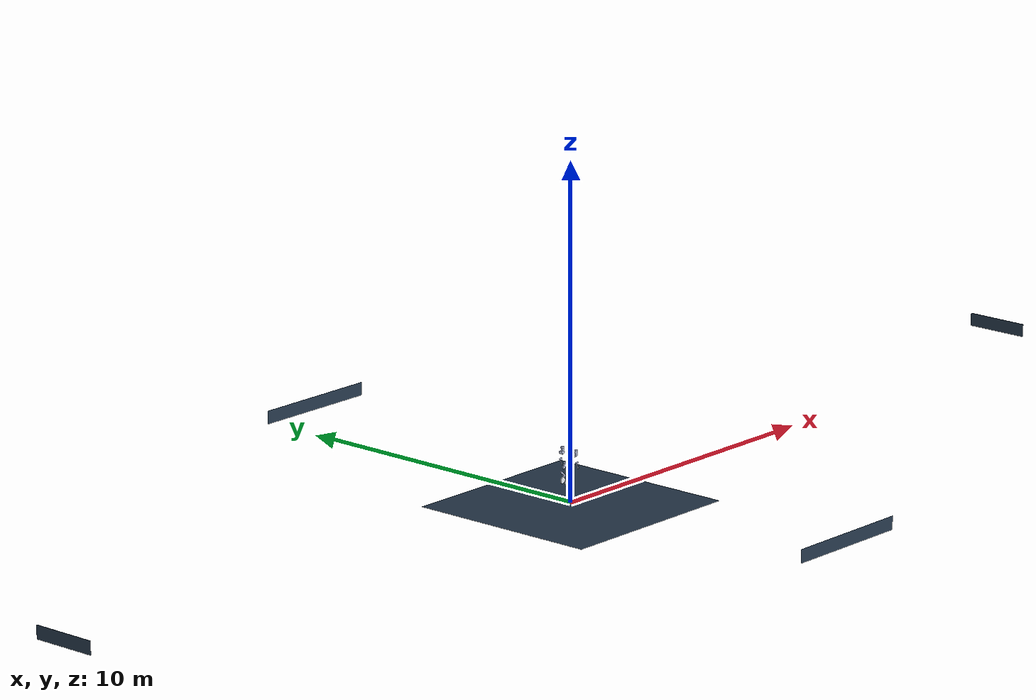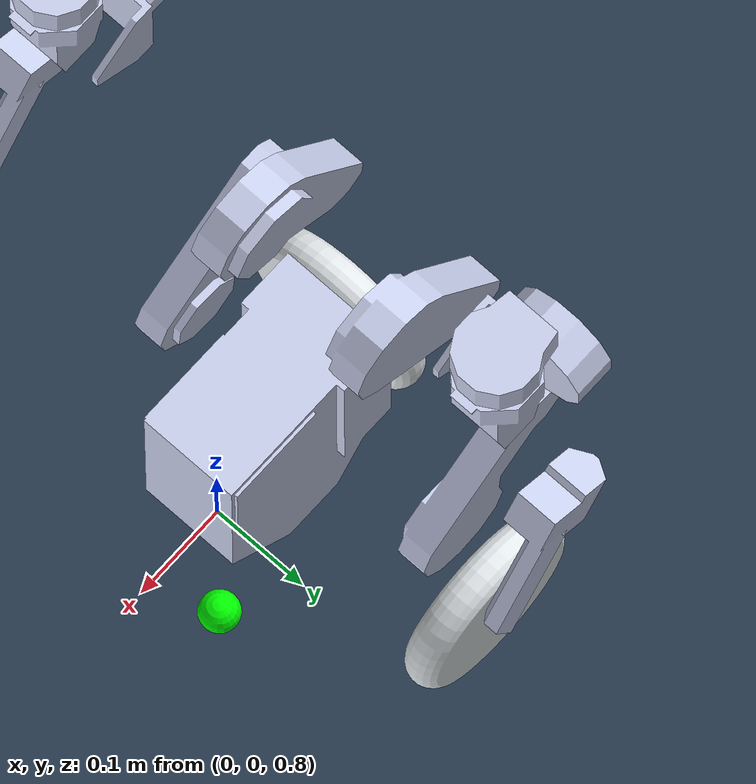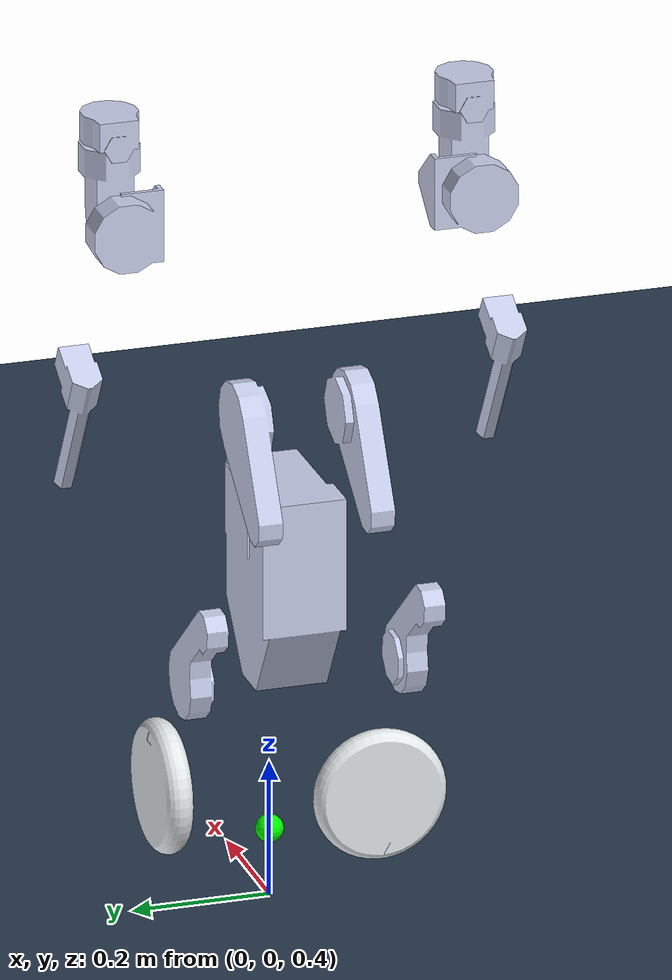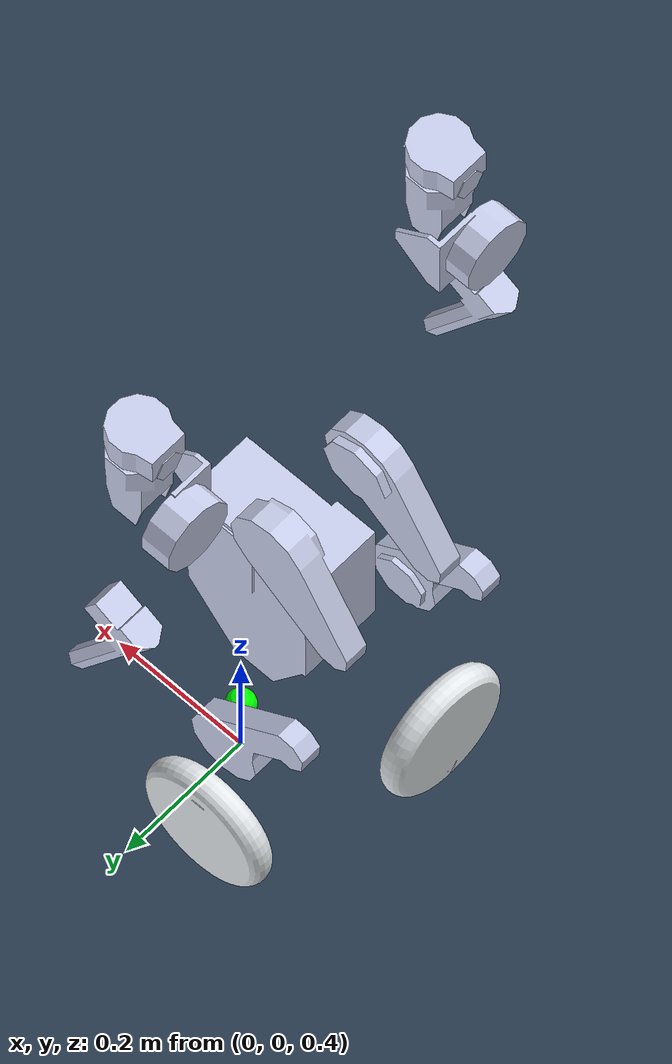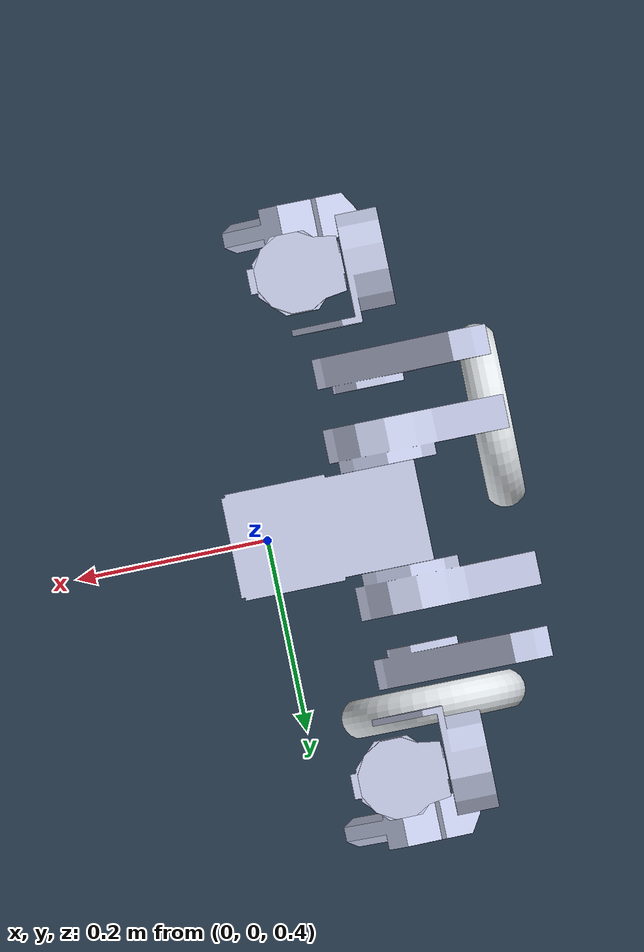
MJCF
<mujoco model="SATYRR_NEW_V4">
    <compiler eulerseq = "zyx" angle="radian" meshdir="C:\Users\RoboDesign Lab\Desktop\BDH\Potential_Field_Obs_Avoidance\mujoco200_win64\src\data\satyrr_wholebody\"/>
    <size njmax="500" nconmax="100" />
    <option integrator="RK4" timestep="0.001"/>

    <default>
		<geom contype = '0' conaffinity = '0'/>
		<default class = 'collision-default'>
			<geom contype = '1' user = '2'/>
			<default class = 'collision-group-a'>
				<geom contype = '2' conaffinity = '4'/>
			</default>
			<default class = 'collision-group-b'>
				<geom contype = '4' conaffinity = '2'/>
			</default>
		</default>
    </default>

    <asset>
        <mesh name="Torso" file="Torso.STL" />
        <mesh name="Thigh_R" file="Thigh_R.STL" />
        <mesh name="Shin_R" file="Shin_R.STL" />
        <mesh name="Wheel_R" file="Wheel_R.STL" />
        <mesh name="Thigh_L" file="Thigh_L.STL" />
        <mesh name="Shin_L" file="Shin_L.STL" />
        <mesh name="Wheel_L" file="Wheel_L.STL" />
        <mesh name="Shoulder_U_L" file="Shoulder_U_L.STL" />
        <mesh name="Shoulder_L" file="Shoulder_L.STL" />
        <mesh name="Arm_L" file="Arm_L.STL" />
        <mesh name="Shank_L" file="Shank_L.STL" />
        <mesh name="Shoulder_U_R" file="Shoulder_U_R.STL" />
        <mesh name="Shoulder_R" file="Shoulder_R.STL" />
        <mesh name="Arm_R" file="Arm_R.STL" />
        <mesh name="Shank_R" file="Shank_R.STL" />
        <texture name="texplane" builtin="checker" height="512"  rgb1=".2 .3 .4" rgb2=".1 0.15 0.2" type="2d" width="512"/>
        <material name="floorplane" reflectance="0.5" texrepeat="1 1" texture="texplane" texuniform="true"/>
        <material name="table_mat" specular="0" shininess="0.5" reflectance="0" rgba="0.93 0.93 0.93 1"></material>

    </asset>

    <worldbody>
        <geom name="floor0" pos="0. 0. 0" size="3 3 .125" type="plane" condim="3" material="floorplane"></geom>
		<body name="floor0" pos="0. 0. 0.0">
			<site name="target0" pos="0 0 0.5" size="0.02 0.02 0.02" rgba="0 1 0 1" type="ellipsoid"></site>
		</body>

		<light directional="true" ambient="0.2 0.2 0.2" diffuse="0.8 0.8 0.8" specular="0.3 0.3 0.3" castshadow="false" pos="0 0 4" dir="0 0 -1" name="light0"></light>

        <body name="wall1_body" pos="20 0 1">
            <geom name="wall1_geom" type="plane" size="1 0.2 0.2" pos="0 0 0" quat="0.5 0.5 0.5 0.5" material="floorplane" condim="1"/>
        </body>
        <body name="wall2_body" pos="0 10 1">
            <geom name="wall2_geom" type="plane" size="2 0.2 0.2" pos="0 0 0" quat="0.7071 0.7071 0 0 " material="floorplane" condim="1"/>
        </body>
        <body name="wall3_body" pos="-20 0 1">
            <geom name="wall3_geom" type="plane" size="1 0.2 0.2" pos="0 0 0" quat="0.5 0.5 0.5 0.5" material="floorplane" condim="1"/>
        </body>
        <body name="wall4_body" pos="0 -10 1">
            <geom name="wall4_geom" type="plane" size="2 0.2 0.2" pos="0 0 0" quat="0.7071 0.7071 0 0 " material="floorplane" condim="1"/>
        </body>
		<!-- camera: front view -->

        <body name="torso" pos="-0.06625 0.0 0.4869">
            <joint axis = "1 0 0" pos = "0 0 0" name = "move_x" type = "slide" limited = "false"/>
			<joint axis = "0 1 0" pos = "0 0 0" name = "move_y" type = "slide" limited = "false"/>
			<joint axis = "0 0 1" pos = "0 0 0" name = "move_z" type = "slide" limited = "false"/>
			<joint axis = "1 0 0" pos = "0 0 0" name = "rotate_roll" type = "hinge" limited = "false"/>
			<joint axis = "0 1 0" pos = "0 0 0" name = "rotate_pitch" type = "hinge" limited = "false"/>
			<joint axis = "0 0 1" pos = "0 0 0" name = "rotate_yaw" type = "hinge" limited = "false"/>
            <geom friction="0.9" type="mesh" rgba="0.79216 0.81961 0.93333 1" mesh="Torso" mass="4.05" />

        <body name="Thigh_R" pos="-0.06625 0 0.36">
            <inertial pos="0 -0.080175 -0.0380315" quat="0.707107 0 0 0.707107" mass="0.904864" diaginertia="0.00325713 0.00280128 0.000871858" />
            <joint name="Hip_R" pos="0 0 0" axis="0 -1 0" />
            <geom type="mesh" rgba="0.792157 0.819608 0.933333 1" mesh="Thigh_R" />
            <body name="Shin_R" pos="0 -0.080175 -0.15">
                <inertial pos="0 0 -0.0789246" quat="0.707107 0 0 0.707107" mass="0.394882" diaginertia="0.00112813 0.00112607 0.000173116" />
                <joint name="Knee_R" pos="0 0 0" axis="0 -1 0" />
                <geom type="mesh" rgba="0.792157 0.819608 0.933333 1" mesh="Shin_R" />
                <body name="Wheel_R" pos="0 0 -0.15" quat="0.707107 0 0 -0.707107">
                    <inertial pos="0.0356257 0 0" mass="0.52599" diaginertia="0.000948894 0.000489944 0.000489944" />
                    <joint name="Ankle_R" pos="0 0 0" axis="1 0 0" />
                    <geom type="mesh" rgba="0.898039 0.917647 0.929412 1" mesh="Wheel_R" />
                </body>
            </body>
        </body>
        <body name="Thigh_L" pos="-0.06625 0 0.36">
            <inertial pos="0 0.080175 -0.0380315" quat="0.707107 0 0 0.707107" mass="0.904864" diaginertia="0.00325713 0.00280128 0.000871858" />
            <joint name="Hip_L" pos="0 0 0" axis="0 -1 0" />
            <geom type="mesh" rgba="0.792157 0.819608 0.933333 1" mesh="Thigh_L" />
            <body name="Shin_L" pos="0 0.080175 -0.15">
                <inertial pos="0 0 -0.0789246" quat="0.707107 0 0 0.707107" mass="0.394882" diaginertia="0.00112813 0.00112607 0.000173116" />
                <joint name="Knee_L" pos="0 0 0" axis="0 -1 0" />
                <geom type="mesh" rgba="0.792157 0.819608 0.933333 1" mesh="Shin_L" />
                <body name="Wheel_L" pos="0 0 -0.15">
                    <inertial pos="0 0.0363743 0" quat="0.707107 0 0 0.707107" mass="0.52599" diaginertia="0.000948894 0.000489944 0.000489944" />
                    <joint name="Ankle_L" pos="0 0 0" axis="0 -1 0" />
                    <geom type="mesh" rgba="0.898039 0.917647 0.929412 1" mesh="Wheel_L" />
                </body>
            </body>
        </body>
        <body name="Shoulder_U_L" pos="-0.06625 0.13274 0.48068">
            <inertial pos="5.98242e-08 -3.82379e-09 0.0467603" quat="0.5 0.5 0.5 0.5" mass="0.246892" diaginertia="0.0012863 0.00103844 0.00030284" />
            <geom type="mesh" rgba="0.792157 0.819608 0.933333 1" mesh="Shoulder_U_L" />
            <body name="Shoulder_L" pos="0 0 0.114214">
                <inertial pos="-7.6505e-09 4.57848e-09 2.98572e-10" quat="0.500001 0.499999 0.499999 0.500001" mass="0.225611" diaginertia="0.000280653 0.000166998 0.000150663" />
                <geom type="mesh" rgba="0.792157 0.819608 0.933333 1" mesh="Shoulder_L" />
                <body name="Arm_L" pos="0 0 0">
                    <inertial pos="0 0.0494924 -0.061196" quat="0.707074 0.00680441 -0.00680441 0.707074" mass="0.584971" diaginertia="0.00283895 0.00259254 0.000369078" />
                    <geom type="mesh" rgba="0.792157 0.819608 0.933333 1" mesh="Arm_L" />
                    <body name="Shank_L" pos="0 0.05082 -0.204">
                        <inertial pos="9.76797e-09 0 -0.0687371" quat="0.707107 0 0 0.707107" mass="0.111225" diaginertia="0.000216628 0.00021518 1.39816e-05" />
                        <geom type="mesh" rgba="0.792157 0.819608 0.933333 1" mesh="Shank_L" />
                    </body>
                </body>
            </body>
        </body>
        <body name="Shoulder_U_R" pos="-0.06625 -0.13274 0.48068">
            <inertial pos="5.98242e-08 -3.82379e-09 0.0467603" quat="0.5 0.5 0.5 0.5" mass="0.246892" diaginertia="0.0012863 0.00103844 0.00030284" />
            <geom type="mesh" rgba="0.792157 0.819608 0.933333 1" mesh="Shoulder_U_R" />
            <body name="Shoulder_R" pos="0 0 0.114214">
                <inertial pos="-7.6505e-09 4.57848e-09 2.98572e-10" quat="0.500001 0.499999 0.499999 0.500001" mass="0.225611" diaginertia="0.000280653 0.000166998 0.000150663" />
                <geom type="mesh" rgba="0.792157 0.819608 0.933333 1" mesh="Shoulder_R" />
                <body name="Arm_R" pos="0 0 0">
                    <inertial pos="0 -0.0494924 -0.061196" quat="0.707074 -0.00680441 0.00680441 0.707074" mass="0.584971" diaginertia="0.00283895 0.00259254 0.000369078" />
                    <geom type="mesh" rgba="0.792157 0.819608 0.933333 1" mesh="Arm_R" />
                    <body name="Shank_R" pos="0 -0.05082 -0.204">
                        <inertial pos="-9.76797e-09 0 -0.0687371" quat="0.707107 0 0 0.707107" mass="0.111225" diaginertia="0.000216628 0.00021518 1.39816e-05" />
                        <geom type="mesh" rgba="0.792157 0.819608 0.933333 1" mesh="Shank_R" />
                    </body>
                </body>
            </body>
        </body>
        </body>
    </worldbody>

    <actuator>
        <motor ctrllimited="true" ctrlrange="-100.0 100.0" gear="1" joint="Hip_L"/>
        <motor ctrllimited="true" ctrlrange="-100.0 100.0" gear="1" joint="Knee_L"/>
        <motor ctrllimited="true" ctrlrange="-100.0 100.0" gear="1" joint="Ankle_L"/>
        <motor ctrllimited="true" ctrlrange="-100.0 100.0" gear="1" joint="Hip_R"/>
        <motor ctrllimited="true" ctrlrange="-100.0 100.0" gear="1" joint="Knee_R"/>
        <motor ctrllimited="true" ctrlrange="-100.0 100.0" gear="1" joint="Ankle_R"/>
    </actuator>
</mujoco>
